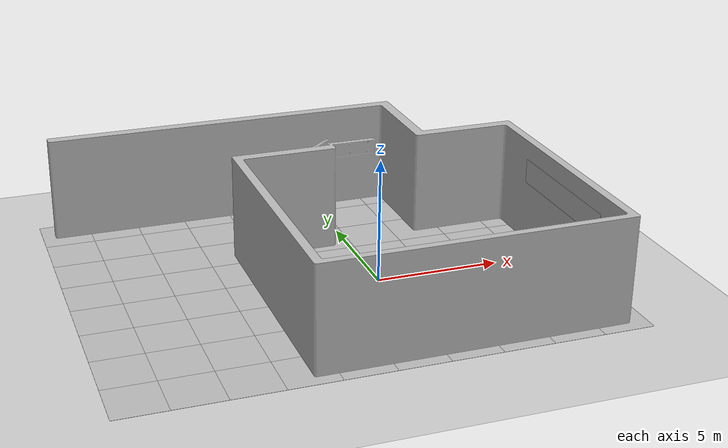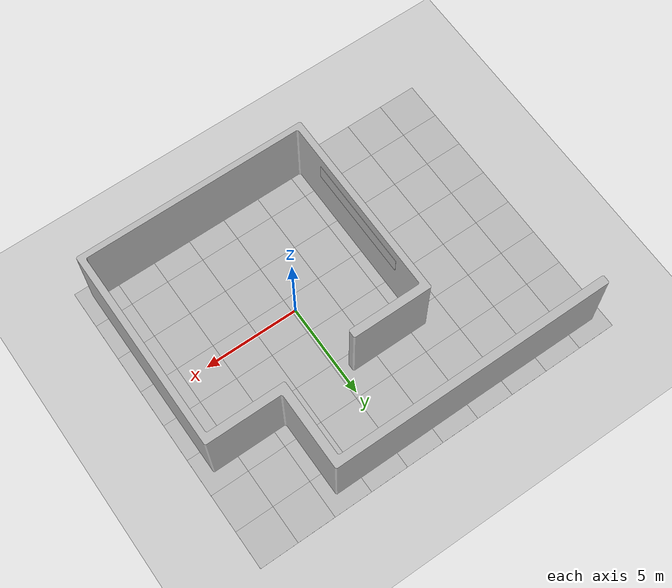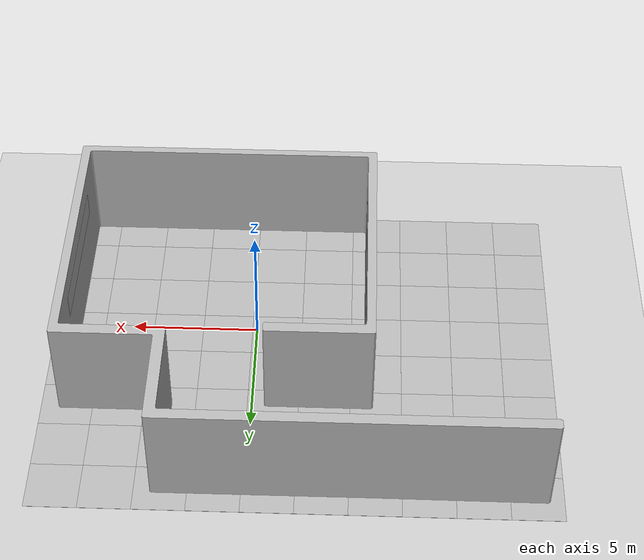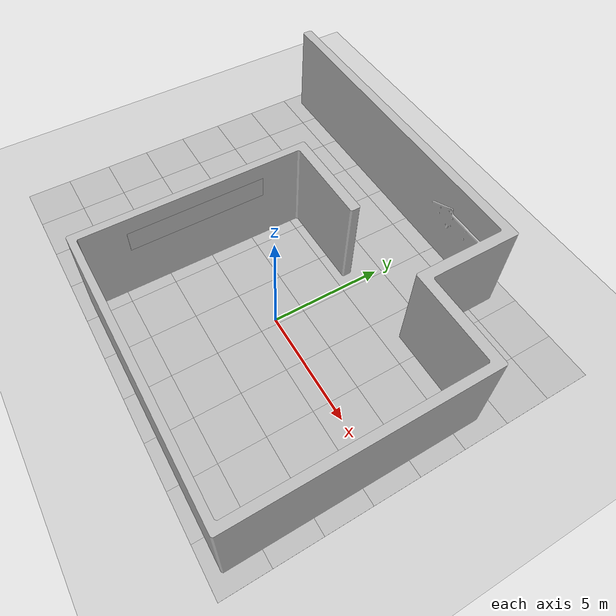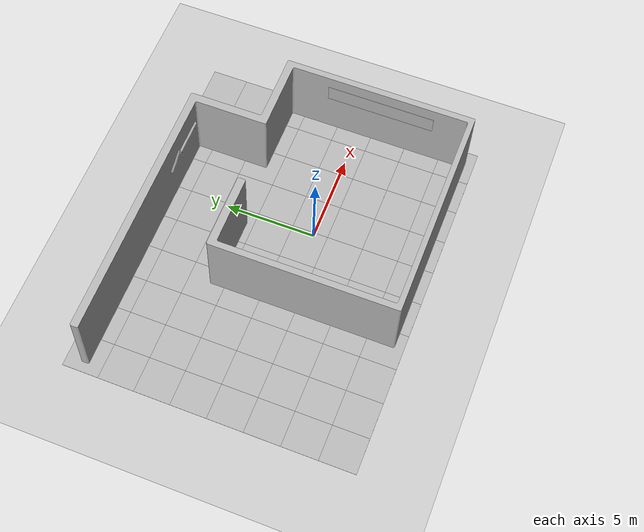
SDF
<sdf version='1.7'>
  <world name='default'>
    <light name='sun' type='directional'>
      <cast_shadows>1</cast_shadows>
      <pose>0 0 10 0 -0 0</pose>
      <diffuse>0.8 0.8 0.8 1</diffuse>
      <specular>0.2 0.2 0.2 1</specular>
      <attenuation>
        <range>1000</range>
        <constant>0.9</constant>
        <linear>0.01</linear>
        <quadratic>0.001</quadratic>
      </attenuation>
      <direction>-0.5 0.1 -0.9</direction>
      <spot>
        <inner_angle>0</inner_angle>
        <outer_angle>0</outer_angle>
        <falloff>0</falloff>
      </spot>
    </light>
    <model name='ground_plane'>
      <static>1</static>
      <link name='link'>
        <collision name='collision'>
          <geometry>
            <plane>
              <normal>0 0 1</normal>
              <size>100 100</size>
            </plane>
          </geometry>
          <surface>
            <contact>
              <collide_bitmask>65535</collide_bitmask>
              <ode/>
            </contact>
            <friction>
              <ode>
                <mu>100</mu>
                <mu2>50</mu2>
              </ode>
              <torsional>
                <ode/>
              </torsional>
            </friction>
            <bounce/>
          </surface>
          <max_contacts>10</max_contacts>
        </collision>
        <visual name='visual'>
          <cast_shadows>0</cast_shadows>
          <geometry>
            <plane>
              <normal>0 0 1</normal>
              <size>100 100</size>
            </plane>
          </geometry>
          <material>
            <script>
              <uri>file://media/materials/scripts/gazebo.material</uri>
              <name>Gazebo/Grey</name>
            </script>
          </material>
        </visual>
        <self_collide>0</self_collide>
        <enable_wind>0</enable_wind>
        <kinematic>0</kinematic>
      </link>
    </model>
    <gravity>0 0 -9.8</gravity>
    <magnetic_field>6e-06 2.3e-05 -4.2e-05</magnetic_field>
    <atmosphere type='adiabatic'/>
    <physics type='ode'>
      <max_step_size>0.001</max_step_size>
      <real_time_factor>1</real_time_factor>
      <real_time_update_rate>1000</real_time_update_rate>
    </physics>
    <scene>
      <ambient>0.4 0.4 0.4 1</ambient>
      <background>0.7 0.7 0.7 1</background>
      <shadows>1</shadows>
    </scene>
    <wind/>
    <spherical_coordinates>
      <surface_model>EARTH_WGS84</surface_model>
      <latitude_deg>0</latitude_deg>
      <longitude_deg>0</longitude_deg>
      <elevation>0</elevation>
      <heading_deg>0</heading_deg>
    </spherical_coordinates>
    <model name='Starting Pen'>
      <static>1</static>
      <link name='link'>
        <collision name='wall_01'>
          <pose>-0 0 2.14 0 -0 0</pose>
          <geometry>
            <box>
              <size>12.15 0.31 4.28</size>
            </box>
          </geometry>
          <max_contacts>10</max_contacts>
          <surface>
            <contact>
              <ode/>
            </contact>
            <bounce/>
            <friction>
              <torsional>
                <ode/>
              </torsional>
              <ode/>
            </friction>
          </surface>
        </collision>
        <collision name='wall_02'>
          <pose>-5.28 14.3205 2.14 0 -0 0</pose>
          <geometry>
            <box>
              <size>14.8 0.46 4.28</size>
            </box>
          </geometry>
          <max_contacts>10</max_contacts>
          <surface>
            <contact>
              <ode/>
            </contact>
            <bounce/>
            <friction>
              <torsional>
                <ode/>
              </torsional>
              <ode/>
            </friction>
          </surface>
        </collision>
        <collision name='wall_03'>
          <pose>-5.91 5 2.14 0 -0 0</pose>
          <geometry>
            <box>
              <size>0.385 10.3 4.28</size>
            </box>
          </geometry>
          <max_contacts>10</max_contacts>
          <surface>
            <contact>
              <ode/>
            </contact>
            <bounce/>
            <friction>
              <torsional>
                <ode/>
              </torsional>
              <ode/>
            </friction>
          </surface>
        </collision>
        <collision name='wall_04'>
          <pose>5.91 5.161 2.14 0 -0 0</pose>
          <geometry>
            <box>
              <size>0.385 10.66 4.28</size>
            </box>
          </geometry>
          <max_contacts>10</max_contacts>
          <surface>
            <contact>
              <ode/>
            </contact>
            <bounce/>
            <friction>
              <torsional>
                <ode/>
              </torsional>
              <ode/>
            </friction>
          </surface>
        </collision>
        <collision name='wall_05'>
          <pose>3.9 10.285 2.14 0 -0 0</pose>
          <geometry>
            <box>
              <size>4.38 0.45 4.28</size>
            </box>
          </geometry>
          <max_contacts>10</max_contacts>
          <surface>
            <contact>
              <ode/>
            </contact>
            <bounce/>
            <friction>
              <torsional>
                <ode/>
              </torsional>
              <ode/>
            </friction>
          </surface>
        </collision>
        <collision name='wall_06'>
          <pose>-4 9.95 2.14 0 -0 0</pose>
          <geometry>
            <box>
              <size>4.25 0.45 4.28</size>
            </box>
          </geometry>
          <max_contacts>10</max_contacts>
          <surface>
            <contact>
              <ode/>
            </contact>
            <bounce/>
            <friction>
              <torsional>
                <ode/>
              </torsional>
              <ode/>
            </friction>
          </surface>
        </collision>
        <collision name='wall_07'>
          <pose>1.94 12.3 2.14 0 -0 0</pose>
          <geometry>
            <box>
              <size>0.45 4.5 4.28</size>
            </box>
          </geometry>
          <max_contacts>10</max_contacts>
          <surface>
            <contact>
              <ode/>
            </contact>
            <bounce/>
            <friction>
              <torsional>
                <ode/>
              </torsional>
              <ode/>
            </friction>
          </surface>
        </collision>
        <collision name='wall_arrow'>
          <pose>-0.232 14.03 2.46 0 -0 0</pose>
          <geometry>
            <box>
              <size>3.33 0.12 1.16</size>
            </box>
          </geometry>
          <max_contacts>10</max_contacts>
          <surface>
            <contact>
              <ode/>
            </contact>
            <bounce/>
            <friction>
              <torsional>
                <ode/>
              </torsional>
              <ode/>
            </friction>
          </surface>
        </collision>
        <collision name='collision_floor'>
          <pose>-3.21 7.355 0 0 -0 0</pose>
          <geometry>
            <box>
              <size>20 16 0.01</size>
            </box>
          </geometry>
          <surface>
            <friction>
              <ode>
                <mu>100</mu>
                <mu2>50</mu2>
              </ode>
              <torsional>
                <ode/>
              </torsional>
            </friction>
            <contact>
              <ode/>
            </contact>
            <bounce/>
          </surface>
          <max_contacts>10</max_contacts>
        </collision>
        <visual name='visual_osrf'>
          <pose>-5.74 4.99 3 0 -0 0</pose>
          <geometry>
            <box>
              <size>0.01 6 1</size>
            </box>
          </geometry>
          <material>
            <script>
              <uri>model://starting_pen/materials/scripts</uri>
              <uri>model://starting_pen/materials/textures</uri>
              <name>StartingPen/OSRF</name>
            </script>
          </material>
        </visual>
        <visual name='visual_osrf_2'>
          <pose>5.74 4.99 3 0 -0 0</pose>
          <geometry>
            <box>
              <size>0.01 6 1</size>
            </box>
          </geometry>
          <material>
            <script>
              <uri>model://starting_pen/materials/scripts</uri>
              <uri>model://starting_pen/materials/textures</uri>
              <name>StartingPen/OSRF</name>
            </script>
          </material>
        </visual>
        <visual name='visual'>
          <geometry>
            <mesh>
              <uri>model://starting_pen/meshes/starting_pen.dae</uri>
            </mesh>
          </geometry>
        </visual>
        <visual name='visual_floor_0'>
          <pose>-12.21 0.35 0 0 -0 0</pose>
          <geometry>
            <box>
              <size>2 2 0.01</size>
            </box>
          </geometry>
          <material>
            <script>
              <uri>model://starting_pen/materials/scripts</uri>
              <uri>model://starting_pen/materials/textures</uri>
              <name>StartingPen/Floor</name>
            </script>
          </material>
        </visual>
        <visual name='visual_floor_1'>
          <pose>-10.21 0.35 0 0 -0 0</pose>
          <geometry>
            <box>
              <size>2 2 0.01</size>
            </box>
          </geometry>
          <material>
            <script>
              <uri>model://starting_pen/materials/scripts</uri>
              <uri>model://starting_pen/materials/textures</uri>
              <name>StartingPen/Floor</name>
            </script>
          </material>
        </visual>
        <visual name='visual_floor_2'>
          <pose>-8.21 0.35 0 0 -0 0</pose>
          <geometry>
            <box>
              <size>2 2 0.01</size>
            </box>
          </geometry>
          <material>
            <script>
              <uri>model://starting_pen/materials/scripts</uri>
              <uri>model://starting_pen/materials/textures</uri>
              <name>StartingPen/Floor</name>
            </script>
          </material>
        </visual>
        <visual name='visual_floor_3'>
          <pose>-6.21 0.35 0 0 -0 0</pose>
          <geometry>
            <box>
              <size>2 2 0.01</size>
            </box>
          </geometry>
          <material>
            <script>
              <uri>model://starting_pen/materials/scripts</uri>
              <uri>model://starting_pen/materials/textures</uri>
              <name>StartingPen/Floor</name>
            </script>
          </material>
        </visual>
        <visual name='visual_floor_4'>
          <pose>-4.21 0.35 0 0 -0 0</pose>
          <geometry>
            <box>
              <size>2 2 0.01</size>
            </box>
          </geometry>
          <material>
            <script>
              <uri>model://starting_pen/materials/scripts</uri>
              <uri>model://starting_pen/materials/textures</uri>
              <name>StartingPen/Floor</name>
            </script>
          </material>
        </visual>
        <visual name='visual_floor_5'>
          <pose>-2.21 0.35 0 0 -0 0</pose>
          <geometry>
            <box>
              <size>2 2 0.01</size>
            </box>
          </geometry>
          <material>
            <script>
              <uri>model://starting_pen/materials/scripts</uri>
              <uri>model://starting_pen/materials/textures</uri>
              <name>StartingPen/Floor</name>
            </script>
          </material>
        </visual>
        <visual name='visual_floor_6'>
          <pose>-0.21 0.35 0 0 -0 0</pose>
          <geometry>
            <box>
              <size>2 2 0.01</size>
            </box>
          </geometry>
          <material>
            <script>
              <uri>model://starting_pen/materials/scripts</uri>
              <uri>model://starting_pen/materials/textures</uri>
              <name>StartingPen/Floor</name>
            </script>
          </material>
        </visual>
        <visual name='visual_floor_7'>
          <pose>1.79 0.35 0 0 -0 1.5707</pose>
          <geometry>
            <box>
              <size>2 2 0.01</size>
            </box>
          </geometry>
          <material>
            <script>
              <uri>model://starting_pen/materials/scripts</uri>
              <uri>model://starting_pen/materials/textures</uri>
              <name>StartingPen/FloorStripped</name>
            </script>
          </material>
        </visual>
        <visual name='visual_floor_8'>
          <pose>3.79 0.35 0 0 -0 0</pose>
          <geometry>
            <box>
              <size>2 2 0.01</size>
            </box>
          </geometry>
          <material>
            <script>
              <uri>model://starting_pen/materials/scripts</uri>
              <uri>model://starting_pen/materials/textures</uri>
              <name>StartingPen/Floor</name>
            </script>
          </material>
        </visual>
        <visual name='visual_floor_9'>
          <pose>5.79 0.35 0 0 -0 0</pose>
          <geometry>
            <box>
              <size>2 2 0.01</size>
            </box>
          </geometry>
          <material>
            <script>
              <uri>model://starting_pen/materials/scripts</uri>
              <uri>model://starting_pen/materials/textures</uri>
              <name>StartingPen/Floor</name>
            </script>
          </material>
        </visual>
        <visual name='visual_floor_10'>
          <pose>-12.21 2.35 0 0 -0 1.5707</pose>
          <geometry>
            <box>
              <size>2 2 0.01</size>
            </box>
          </geometry>
          <material>
            <script>
              <uri>model://starting_pen/materials/scripts</uri>
              <uri>model://starting_pen/materials/textures</uri>
              <name>StartingPen/FloorStripped</name>
            </script>
          </material>
        </visual>
        <visual name='visual_floor_11'>
          <pose>-10.21 2.35 0 0 -0 0</pose>
          <geometry>
            <box>
              <size>2 2 0.01</size>
            </box>
          </geometry>
          <material>
            <script>
              <uri>model://starting_pen/materials/scripts</uri>
              <uri>model://starting_pen/materials/textures</uri>
              <name>StartingPen/Floor</name>
            </script>
          </material>
        </visual>
        <visual name='visual_floor_12'>
          <pose>-8.21 2.35 0 0 -0 0</pose>
          <geometry>
            <box>
              <size>2 2 0.01</size>
            </box>
          </geometry>
          <material>
            <script>
              <uri>model://starting_pen/materials/scripts</uri>
              <uri>model://starting_pen/materials/textures</uri>
              <name>StartingPen/Floor</name>
            </script>
          </material>
        </visual>
        <visual name='visual_floor_13'>
          <pose>-6.21 2.35 0 0 -0 0</pose>
          <geometry>
            <box>
              <size>2 2 0.01</size>
            </box>
          </geometry>
          <material>
            <script>
              <uri>model://starting_pen/materials/scripts</uri>
              <uri>model://starting_pen/materials/textures</uri>
              <name>StartingPen/Floor</name>
            </script>
          </material>
        </visual>
        <visual name='visual_floor_14'>
          <pose>-4.21 2.35 0 0 -0 0</pose>
          <geometry>
            <box>
              <size>2 2 0.01</size>
            </box>
          </geometry>
          <material>
            <script>
              <uri>model://starting_pen/materials/scripts</uri>
              <uri>model://starting_pen/materials/textures</uri>
              <name>StartingPen/Floor</name>
            </script>
          </material>
        </visual>
        <visual name='visual_floor_15'>
          <pose>-2.21 2.35 0 0 -0 0</pose>
          <geometry>
            <box>
              <size>2 2 0.01</size>
            </box>
          </geometry>
          <material>
            <script>
              <uri>model://starting_pen/materials/scripts</uri>
              <uri>model://starting_pen/materials/textures</uri>
              <name>StartingPen/Floor</name>
            </script>
          </material>
        </visual>
        <visual name='visual_floor_16'>
          <pose>-0.21 2.35 0 0 -0 1.5707</pose>
          <geometry>
            <box>
              <size>2 2 0.01</size>
            </box>
          </geometry>
          <material>
            <script>
              <uri>model://starting_pen/materials/scripts</uri>
              <uri>model://starting_pen/materials/textures</uri>
              <name>StartingPen/FloorStripped</name>
            </script>
          </material>
        </visual>
        <visual name='visual_floor_17'>
          <pose>1.79 2.35 0 0 -0 1.5707</pose>
          <geometry>
            <box>
              <size>2 2 0.01</size>
            </box>
          </geometry>
          <material>
            <script>
              <uri>model://starting_pen/materials/scripts</uri>
              <uri>model://starting_pen/materials/textures</uri>
              <name>StartingPen/Floor</name>
            </script>
          </material>
        </visual>
        <visual name='visual_floor_18'>
          <pose>3.79 2.35 0 0 -0 0</pose>
          <geometry>
            <box>
              <size>2 2 0.01</size>
            </box>
          </geometry>
          <material>
            <script>
              <uri>model://starting_pen/materials/scripts</uri>
              <uri>model://starting_pen/materials/textures</uri>
              <name>StartingPen/Floor</name>
            </script>
          </material>
        </visual>
        <visual name='visual_floor_19'>
          <pose>5.79 2.35 0 0 -0 0</pose>
          <geometry>
            <box>
              <size>2 2 0.01</size>
            </box>
          </geometry>
          <material>
            <script>
              <uri>model://starting_pen/materials/scripts</uri>
              <uri>model://starting_pen/materials/textures</uri>
              <name>StartingPen/Floor</name>
            </script>
          </material>
        </visual>
        <visual name='visual_floor_20'>
          <pose>-12.21 4.35 0 0 -0 0</pose>
          <geometry>
            <box>
              <size>2 2 0.01</size>
            </box>
          </geometry>
          <material>
            <script>
              <uri>model://starting_pen/materials/scripts</uri>
              <uri>model://starting_pen/materials/textures</uri>
              <name>StartingPen/Floor</name>
            </script>
          </material>
        </visual>
        <visual name='visual_floor_21'>
          <pose>-10.21 4.35 0 0 -0 0</pose>
          <geometry>
            <box>
              <size>2 2 0.01</size>
            </box>
          </geometry>
          <material>
            <script>
              <uri>model://starting_pen/materials/scripts</uri>
              <uri>model://starting_pen/materials/textures</uri>
              <name>StartingPen/Floor</name>
            </script>
          </material>
        </visual>
        <visual name='visual_floor_22'>
          <pose>-8.21 4.35 0 0 -0 1.5707</pose>
          <geometry>
            <box>
              <size>2 2 0.01</size>
            </box>
          </geometry>
          <material>
            <script>
              <uri>model://starting_pen/materials/scripts</uri>
              <uri>model://starting_pen/materials/textures</uri>
              <name>StartingPen/FloorStripped</name>
            </script>
          </material>
        </visual>
        <visual name='visual_floor_23'>
          <pose>-6.21 4.35 0 0 -0 0</pose>
          <geometry>
            <box>
              <size>2 2 0.01</size>
            </box>
          </geometry>
          <material>
            <script>
              <uri>model://starting_pen/materials/scripts</uri>
              <uri>model://starting_pen/materials/textures</uri>
              <name>StartingPen/Floor</name>
            </script>
          </material>
        </visual>
        <visual name='visual_floor_24'>
          <pose>-4.21 4.35 0 0 -0 0</pose>
          <geometry>
            <box>
              <size>2 2 0.01</size>
            </box>
          </geometry>
          <material>
            <script>
              <uri>model://starting_pen/materials/scripts</uri>
              <uri>model://starting_pen/materials/textures</uri>
              <name>StartingPen/Floor</name>
            </script>
          </material>
        </visual>
        <visual name='visual_floor_25'>
          <pose>-2.21 4.35 0 0 -0 0</pose>
          <geometry>
            <box>
              <size>2 2 0.01</size>
            </box>
          </geometry>
          <material>
            <script>
              <uri>model://starting_pen/materials/scripts</uri>
              <uri>model://starting_pen/materials/textures</uri>
              <name>StartingPen/Floor</name>
            </script>
          </material>
        </visual>
        <visual name='visual_floor_26'>
          <pose>-0.21 4.35 0 0 -0 0</pose>
          <geometry>
            <box>
              <size>2 2 0.01</size>
            </box>
          </geometry>
          <material>
            <script>
              <uri>model://starting_pen/materials/scripts</uri>
              <uri>model://starting_pen/materials/textures</uri>
              <name>StartingPen/Floor</name>
            </script>
          </material>
        </visual>
        <visual name='visual_floor_27'>
          <pose>1.79 4.35 0 0 -0 0</pose>
          <geometry>
            <box>
              <size>2 2 0.01</size>
            </box>
          </geometry>
          <material>
            <script>
              <uri>model://starting_pen/materials/scripts</uri>
              <uri>model://starting_pen/materials/textures</uri>
              <name>StartingPen/Floor</name>
            </script>
          </material>
        </visual>
        <visual name='visual_floor_28'>
          <pose>3.79 4.35 0 0 -0 0</pose>
          <geometry>
            <box>
              <size>2 2 0.01</size>
            </box>
          </geometry>
          <material>
            <script>
              <uri>model://starting_pen/materials/scripts</uri>
              <uri>model://starting_pen/materials/textures</uri>
              <name>StartingPen/Floor</name>
            </script>
          </material>
        </visual>
        <visual name='visual_floor_29'>
          <pose>5.79 4.35 0 0 -0 1.5707</pose>
          <geometry>
            <box>
              <size>2 2 0.01</size>
            </box>
          </geometry>
          <material>
            <script>
              <uri>model://starting_pen/materials/scripts</uri>
              <uri>model://starting_pen/materials/textures</uri>
              <name>StartingPen/FloorStripped</name>
            </script>
          </material>
        </visual>
        <visual name='visual_floor_30'>
          <pose>-12.21 6.35 0 0 -0 0</pose>
          <geometry>
            <box>
              <size>2 2 0.01</size>
            </box>
          </geometry>
          <material>
            <script>
              <uri>model://starting_pen/materials/scripts</uri>
              <uri>model://starting_pen/materials/textures</uri>
              <name>StartingPen/Floor</name>
            </script>
          </material>
        </visual>
        <visual name='visual_floor_31'>
          <pose>-10.21 6.35 0 0 -0 0</pose>
          <geometry>
            <box>
              <size>2 2 0.01</size>
            </box>
          </geometry>
          <material>
            <script>
              <uri>model://starting_pen/materials/scripts</uri>
              <uri>model://starting_pen/materials/textures</uri>
              <name>StartingPen/Floor</name>
            </script>
          </material>
        </visual>
        <visual name='visual_floor_32'>
          <pose>-8.21 6.35 0 0 -0 0</pose>
          <geometry>
            <box>
              <size>2 2 0.01</size>
            </box>
          </geometry>
          <material>
            <script>
              <uri>model://starting_pen/materials/scripts</uri>
              <uri>model://starting_pen/materials/textures</uri>
              <name>StartingPen/Floor</name>
            </script>
          </material>
        </visual>
        <visual name='visual_floor_33'>
          <pose>-6.21 6.35 0 0 -0 1.5707</pose>
          <geometry>
            <box>
              <size>2 2 0.01</size>
            </box>
          </geometry>
          <material>
            <script>
              <uri>model://starting_pen/materials/scripts</uri>
              <uri>model://starting_pen/materials/textures</uri>
              <name>StartingPen/FloorStripped</name>
            </script>
          </material>
        </visual>
        <visual name='visual_floor_34'>
          <pose>-4.21 6.35 0 0 -0 0</pose>
          <geometry>
            <box>
              <size>2 2 0.01</size>
            </box>
          </geometry>
          <material>
            <script>
              <uri>model://starting_pen/materials/scripts</uri>
              <uri>model://starting_pen/materials/textures</uri>
              <name>StartingPen/Floor</name>
            </script>
          </material>
        </visual>
        <visual name='visual_floor_35'>
          <pose>-2.21 6.35 0 0 -0 1.5707</pose>
          <geometry>
            <box>
              <size>2 2 0.01</size>
            </box>
          </geometry>
          <material>
            <script>
              <uri>model://starting_pen/materials/scripts</uri>
              <uri>model://starting_pen/materials/textures</uri>
              <name>StartingPen/FloorStripped</name>
            </script>
          </material>
        </visual>
        <visual name='visual_floor_36'>
          <pose>-0.21 6.35 0 0 -0 0</pose>
          <geometry>
            <box>
              <size>2 2 0.01</size>
            </box>
          </geometry>
          <material>
            <script>
              <uri>model://starting_pen/materials/scripts</uri>
              <uri>model://starting_pen/materials/textures</uri>
              <name>StartingPen/Floor</name>
            </script>
          </material>
        </visual>
        <visual name='visual_floor_37'>
          <pose>1.79 6.35 0 0 -0 0</pose>
          <geometry>
            <box>
              <size>2 2 0.01</size>
            </box>
          </geometry>
          <material>
            <script>
              <uri>model://starting_pen/materials/scripts</uri>
              <uri>model://starting_pen/materials/textures</uri>
              <name>StartingPen/Floor</name>
            </script>
          </material>
        </visual>
        <visual name='visual_floor_38'>
          <pose>3.79 6.35 0 0 -0 0</pose>
          <geometry>
            <box>
              <size>2 2 0.01</size>
            </box>
          </geometry>
          <material>
            <script>
              <uri>model://starting_pen/materials/scripts</uri>
              <uri>model://starting_pen/materials/textures</uri>
              <name>StartingPen/Floor</name>
            </script>
          </material>
        </visual>
        <visual name='visual_floor_39'>
          <pose>5.79 6.35 0 0 -0 0</pose>
          <geometry>
            <box>
              <size>2 2 0.01</size>
            </box>
          </geometry>
          <material>
            <script>
              <uri>model://starting_pen/materials/scripts</uri>
              <uri>model://starting_pen/materials/textures</uri>
              <name>StartingPen/Floor</name>
            </script>
          </material>
        </visual>
        <visual name='visual_floor_40'>
          <pose>-12.21 8.35 0 0 -0 0</pose>
          <geometry>
            <box>
              <size>2 2 0.01</size>
            </box>
          </geometry>
          <material>
            <script>
              <uri>model://starting_pen/materials/scripts</uri>
              <uri>model://starting_pen/materials/textures</uri>
              <name>StartingPen/Floor</name>
            </script>
          </material>
        </visual>
        <visual name='visual_floor_41'>
          <pose>-10.21 8.35 0 0 -0 0</pose>
          <geometry>
            <box>
              <size>2 2 0.01</size>
            </box>
          </geometry>
          <material>
            <script>
              <uri>model://starting_pen/materials/scripts</uri>
              <uri>model://starting_pen/materials/textures</uri>
              <name>StartingPen/Floor</name>
            </script>
          </material>
        </visual>
        <visual name='visual_floor_42'>
          <pose>-8.21 8.35 0 0 -0 1.5707</pose>
          <geometry>
            <box>
              <size>2 2 0.01</size>
            </box>
          </geometry>
          <material>
            <script>
              <uri>model://starting_pen/materials/scripts</uri>
              <uri>model://starting_pen/materials/textures</uri>
              <name>StartingPen/FloorStripped</name>
            </script>
          </material>
        </visual>
        <visual name='visual_floor_43'>
          <pose>-6.21 8.35 0 0 -0 0</pose>
          <geometry>
            <box>
              <size>2 2 0.01</size>
            </box>
          </geometry>
          <material>
            <script>
              <uri>model://starting_pen/materials/scripts</uri>
              <uri>model://starting_pen/materials/textures</uri>
              <name>StartingPen/Floor</name>
            </script>
          </material>
        </visual>
        <visual name='visual_floor_44'>
          <pose>-4.21 8.35 0 0 -0 0</pose>
          <geometry>
            <box>
              <size>2 2 0.01</size>
            </box>
          </geometry>
          <material>
            <script>
              <uri>model://starting_pen/materials/scripts</uri>
              <uri>model://starting_pen/materials/textures</uri>
              <name>StartingPen/Floor</name>
            </script>
          </material>
        </visual>
        <visual name='visual_floor_45'>
          <pose>-2.21 8.35 0 0 -0 0</pose>
          <geometry>
            <box>
              <size>2 2 0.01</size>
            </box>
          </geometry>
          <material>
            <script>
              <uri>model://starting_pen/materials/scripts</uri>
              <uri>model://starting_pen/materials/textures</uri>
              <name>StartingPen/Floor</name>
            </script>
          </material>
        </visual>
        <visual name='visual_floor_46'>
          <pose>-0.21 8.35 0 0 -0 1.5707</pose>
          <geometry>
            <box>
              <size>2 2 0.01</size>
            </box>
          </geometry>
          <material>
            <script>
              <uri>model://starting_pen/materials/scripts</uri>
              <uri>model://starting_pen/materials/textures</uri>
              <name>StartingPen/FloorStripped</name>
            </script>
          </material>
        </visual>
        <visual name='visual_floor_47'>
          <pose>1.79 8.35 0 0 -0 0</pose>
          <geometry>
            <box>
              <size>2 2 0.01</size>
            </box>
          </geometry>
          <material>
            <script>
              <uri>model://starting_pen/materials/scripts</uri>
              <uri>model://starting_pen/materials/textures</uri>
              <name>StartingPen/Floor</name>
            </script>
          </material>
        </visual>
        <visual name='visual_floor_48'>
          <pose>3.79 8.35 0 0 -0 0</pose>
          <geometry>
            <box>
              <size>2 2 0.01</size>
            </box>
          </geometry>
          <material>
            <script>
              <uri>model://starting_pen/materials/scripts</uri>
              <uri>model://starting_pen/materials/textures</uri>
              <name>StartingPen/Floor</name>
            </script>
          </material>
        </visual>
        <visual name='visual_floor_49'>
          <pose>5.79 8.35 0 0 -0 0</pose>
          <geometry>
            <box>
              <size>2 2 0.01</size>
            </box>
          </geometry>
          <material>
            <script>
              <uri>model://starting_pen/materials/scripts</uri>
              <uri>model://starting_pen/materials/textures</uri>
              <name>StartingPen/Floor</name>
            </script>
          </material>
        </visual>
        <visual name='visual_floor_50'>
          <pose>-12.21 10.35 0 0 -0 0</pose>
          <geometry>
            <box>
              <size>2 2 0.01</size>
            </box>
          </geometry>
          <material>
            <script>
              <uri>model://starting_pen/materials/scripts</uri>
              <uri>model://starting_pen/materials/textures</uri>
              <name>StartingPen/Floor</name>
            </script>
          </material>
        </visual>
        <visual name='visual_floor_51'>
          <pose>-10.21 10.35 0 0 -0 0</pose>
          <geometry>
            <box>
              <size>2 2 0.01</size>
            </box>
          </geometry>
          <material>
            <script>
              <uri>model://starting_pen/materials/scripts</uri>
              <uri>model://starting_pen/materials/textures</uri>
              <name>StartingPen/Floor</name>
            </script>
          </material>
        </visual>
        <visual name='visual_floor_52'>
          <pose>-8.21 10.35 0 0 -0 0</pose>
          <geometry>
            <box>
              <size>2 2 0.01</size>
            </box>
          </geometry>
          <material>
            <script>
              <uri>model://starting_pen/materials/scripts</uri>
              <uri>model://starting_pen/materials/textures</uri>
              <name>StartingPen/Floor</name>
            </script>
          </material>
        </visual>
        <visual name='visual_floor_53'>
          <pose>-6.21 10.35 0 0 -0 1.5707</pose>
          <geometry>
            <box>
              <size>2 2 0.01</size>
            </box>
          </geometry>
          <material>
            <script>
              <uri>model://starting_pen/materials/scripts</uri>
              <uri>model://starting_pen/materials/textures</uri>
              <name>StartingPen/FloorStripped</name>
            </script>
          </material>
        </visual>
        <visual name='visual_floor_54'>
          <pose>-4.21 10.35 0 0 -0 0</pose>
          <geometry>
            <box>
              <size>2 2 0.01</size>
            </box>
          </geometry>
          <material>
            <script>
              <uri>model://starting_pen/materials/scripts</uri>
              <uri>model://starting_pen/materials/textures</uri>
              <name>StartingPen/Floor</name>
            </script>
          </material>
        </visual>
        <visual name='visual_floor_55'>
          <pose>-2.21 10.35 0 0 -0 0</pose>
          <geometry>
            <box>
              <size>2 2 0.01</size>
            </box>
          </geometry>
          <material>
            <script>
              <uri>model://starting_pen/materials/scripts</uri>
              <uri>model://starting_pen/materials/textures</uri>
              <name>StartingPen/Floor</name>
            </script>
          </material>
        </visual>
        <visual name='visual_floor_56'>
          <pose>-0.21 10.35 0 0 -0 0</pose>
          <geometry>
            <box>
              <size>2 2 0.01</size>
            </box>
          </geometry>
          <material>
            <script>
              <uri>model://starting_pen/materials/scripts</uri>
              <uri>model://starting_pen/materials/textures</uri>
              <name>StartingPen/Floor</name>
            </script>
          </material>
        </visual>
        <visual name='visual_floor_57'>
          <pose>1.79 10.35 0 0 -0 0</pose>
          <geometry>
            <box>
              <size>2 2 0.01</size>
            </box>
          </geometry>
          <material>
            <script>
              <uri>model://starting_pen/materials/scripts</uri>
              <uri>model://starting_pen/materials/textures</uri>
              <name>StartingPen/Floor</name>
            </script>
          </material>
        </visual>
        <visual name='visual_floor_58'>
          <pose>3.79 10.35 0 0 -0 0</pose>
          <geometry>
            <box>
              <size>2 2 0.01</size>
            </box>
          </geometry>
          <material>
            <script>
              <uri>model://starting_pen/materials/scripts</uri>
              <uri>model://starting_pen/materials/textures</uri>
              <name>StartingPen/Floor</name>
            </script>
          </material>
        </visual>
        <visual name='visual_floor_59'>
          <pose>5.79 10.35 0 0 -0 0</pose>
          <geometry>
            <box>
              <size>2 2 0.01</size>
            </box>
          </geometry>
          <material>
            <script>
              <uri>model://starting_pen/materials/scripts</uri>
              <uri>model://starting_pen/materials/textures</uri>
              <name>StartingPen/Floor</name>
            </script>
          </material>
        </visual>
        <visual name='visual_floor_60'>
          <pose>-12.21 12.35 0 0 -0 1.5707</pose>
          <geometry>
            <box>
              <size>2 2 0.01</size>
            </box>
          </geometry>
          <material>
            <script>
              <uri>model://starting_pen/materials/scripts</uri>
              <uri>model://starting_pen/materials/textures</uri>
              <name>StartingPen/FloorStripped</name>
            </script>
          </material>
        </visual>
        <visual name='visual_floor_61'>
          <pose>-10.21 12.35 0 0 -0 0</pose>
          <geometry>
            <box>
              <size>2 2 0.01</size>
            </box>
          </geometry>
          <material>
            <script>
              <uri>model://starting_pen/materials/scripts</uri>
              <uri>model://starting_pen/materials/textures</uri>
              <name>StartingPen/Floor</name>
            </script>
          </material>
        </visual>
        <visual name='visual_floor_62'>
          <pose>-8.21 12.35 0 0 -0 0</pose>
          <geometry>
            <box>
              <size>2 2 0.01</size>
            </box>
          </geometry>
          <material>
            <script>
              <uri>model://starting_pen/materials/scripts</uri>
              <uri>model://starting_pen/materials/textures</uri>
              <name>StartingPen/Floor</name>
            </script>
          </material>
        </visual>
        <visual name='visual_floor_63'>
          <pose>-6.21 12.35 0 0 -0 0</pose>
          <geometry>
            <box>
              <size>2 2 0.01</size>
            </box>
          </geometry>
          <material>
            <script>
              <uri>model://starting_pen/materials/scripts</uri>
              <uri>model://starting_pen/materials/textures</uri>
              <name>StartingPen/Floor</name>
            </script>
          </material>
        </visual>
        <visual name='visual_floor_64'>
          <pose>-4.21 12.35 0 0 -0 0</pose>
          <geometry>
            <box>
              <size>2 2 0.01</size>
            </box>
          </geometry>
          <material>
            <script>
              <uri>model://starting_pen/materials/scripts</uri>
              <uri>model://starting_pen/materials/textures</uri>
              <name>StartingPen/Floor</name>
            </script>
          </material>
        </visual>
        <visual name='visual_floor_65'>
          <pose>-2.21 12.35 0 0 -0 1.5707</pose>
          <geometry>
            <box>
              <size>2 2 0.01</size>
            </box>
          </geometry>
          <material>
            <script>
              <uri>model://starting_pen/materials/scripts</uri>
              <uri>model://starting_pen/materials/textures</uri>
              <name>StartingPen/FloorStripped</name>
            </script>
          </material>
        </visual>
        <visual name='visual_floor_66'>
          <pose>-0.21 12.35 0 0 -0 0</pose>
          <geometry>
            <box>
              <size>2 2 0.01</size>
            </box>
          </geometry>
          <material>
            <script>
              <uri>model://starting_pen/materials/scripts</uri>
              <uri>model://starting_pen/materials/textures</uri>
              <name>StartingPen/Floor</name>
            </script>
          </material>
        </visual>
        <visual name='visual_floor_67'>
          <pose>1.79 12.35 0 0 -0 0</pose>
          <geometry>
            <box>
              <size>2 2 0.01</size>
            </box>
          </geometry>
          <material>
            <script>
              <uri>model://starting_pen/materials/scripts</uri>
              <uri>model://starting_pen/materials/textures</uri>
              <name>StartingPen/Floor</name>
            </script>
          </material>
        </visual>
        <visual name='visual_floor_68'>
          <pose>3.79 12.35 0 0 -0 0</pose>
          <geometry>
            <box>
              <size>2 2 0.01</size>
            </box>
          </geometry>
          <material>
            <script>
              <uri>model://starting_pen/materials/scripts</uri>
              <uri>model://starting_pen/materials/textures</uri>
              <name>StartingPen/Floor</name>
            </script>
          </material>
        </visual>
        <visual name='visual_floor_69'>
          <pose>5.79 12.35 0 0 -0 0</pose>
          <geometry>
            <box>
              <size>2 2 0.01</size>
            </box>
          </geometry>
          <material>
            <script>
              <uri>model://starting_pen/materials/scripts</uri>
              <uri>model://starting_pen/materials/textures</uri>
              <name>StartingPen/Floor</name>
            </script>
          </material>
        </visual>
        <visual name='visual_floor_70'>
          <pose>-12.21 14.35 0 0 -0 0</pose>
          <geometry>
            <box>
              <size>2 2 0.01</size>
            </box>
          </geometry>
          <material>
            <script>
              <uri>model://starting_pen/materials/scripts</uri>
              <uri>model://starting_pen/materials/textures</uri>
              <name>StartingPen/Floor</name>
            </script>
          </material>
        </visual>
        <visual name='visual_floor_71'>
          <pose>-10.21 14.35 0 0 -0 0</pose>
          <geometry>
            <box>
              <size>2 2 0.01</size>
            </box>
          </geometry>
          <material>
            <script>
              <uri>model://starting_pen/materials/scripts</uri>
              <uri>model://starting_pen/materials/textures</uri>
              <name>StartingPen/Floor</name>
            </script>
          </material>
        </visual>
        <visual name='visual_floor_72'>
          <pose>-8.21 14.35 0 0 -0 0</pose>
          <geometry>
            <box>
              <size>2 2 0.01</size>
            </box>
          </geometry>
          <material>
            <script>
              <uri>model://starting_pen/materials/scripts</uri>
              <uri>model://starting_pen/materials/textures</uri>
              <name>StartingPen/Floor</name>
            </script>
          </material>
        </visual>
        <visual name='visual_floor_73'>
          <pose>-6.21 14.35 0 0 -0 0</pose>
          <geometry>
            <box>
              <size>2 2 0.01</size>
            </box>
          </geometry>
          <material>
            <script>
              <uri>model://starting_pen/materials/scripts</uri>
              <uri>model://starting_pen/materials/textures</uri>
              <name>StartingPen/Floor</name>
            </script>
          </material>
        </visual>
        <visual name='visual_floor_74'>
          <pose>-4.21 14.35 0 0 -0 1.5707</pose>
          <geometry>
            <box>
              <size>2 2 0.01</size>
            </box>
          </geometry>
          <material>
            <script>
              <uri>model://starting_pen/materials/scripts</uri>
              <uri>model://starting_pen/materials/textures</uri>
              <name>StartingPen/FloorStripped</name>
            </script>
          </material>
        </visual>
        <visual name='visual_floor_75'>
          <pose>-2.21 14.35 0 0 -0 1.5707</pose>
          <geometry>
            <box>
              <size>2 2 0.01</size>
            </box>
          </geometry>
          <material>
            <script>
              <uri>model://starting_pen/materials/scripts</uri>
              <uri>model://starting_pen/materials/textures</uri>
              <name>StartingPen/Floor</name>
            </script>
          </material>
        </visual>
        <visual name='visual_floor_76'>
          <pose>-0.21 14.35 0 0 -0 0</pose>
          <geometry>
            <box>
              <size>2 2 0.01</size>
            </box>
          </geometry>
          <material>
            <script>
              <uri>model://starting_pen/materials/scripts</uri>
              <uri>model://starting_pen/materials/textures</uri>
              <name>StartingPen/Floor</name>
            </script>
          </material>
        </visual>
        <visual name='visual_floor_77'>
          <pose>1.79 14.35 0 0 -0 0</pose>
          <geometry>
            <box>
              <size>2 2 0.01</size>
            </box>
          </geometry>
          <material>
            <script>
              <uri>model://starting_pen/materials/scripts</uri>
              <uri>model://starting_pen/materials/textures</uri>
              <name>StartingPen/Floor</name>
            </script>
          </material>
        </visual>
        <visual name='visual_floor_78'>
          <pose>3.79 14.35 0 0 -0 0</pose>
          <geometry>
            <box>
              <size>2 2 0.01</size>
            </box>
          </geometry>
          <material>
            <script>
              <uri>model://starting_pen/materials/scripts</uri>
              <uri>model://starting_pen/materials/textures</uri>
              <name>StartingPen/FloorStripped</name>
            </script>
          </material>
        </visual>
        <visual name='visual_floor_79'>
          <pose>5.79 14.35 0 0 -0 0</pose>
          <geometry>
            <box>
              <size>2 2 0.01</size>
            </box>
          </geometry>
          <material>
            <script>
              <uri>model://starting_pen/materials/scripts</uri>
              <uri>model://starting_pen/materials/textures</uri>
              <name>StartingPen/Floor</name>
            </script>
          </material>
        </visual>
        <self_collide>0</self_collide>
        <enable_wind>0</enable_wind>
        <kinematic>0</kinematic>
      </link>
      <pose>1.38976 -6.10393 0 0 -0 0</pose>
    </model>

    <gui fullscreen='0'>
      <camera name='user_camera'>
        <pose>30.0177 3.02348 36.682 0 0.933797 -3.12699</pose>
        <view_controller>orbit</view_controller>
        <projection_type>perspective</projection_type>
      </camera>
    </gui>
  </world>
</sdf>
